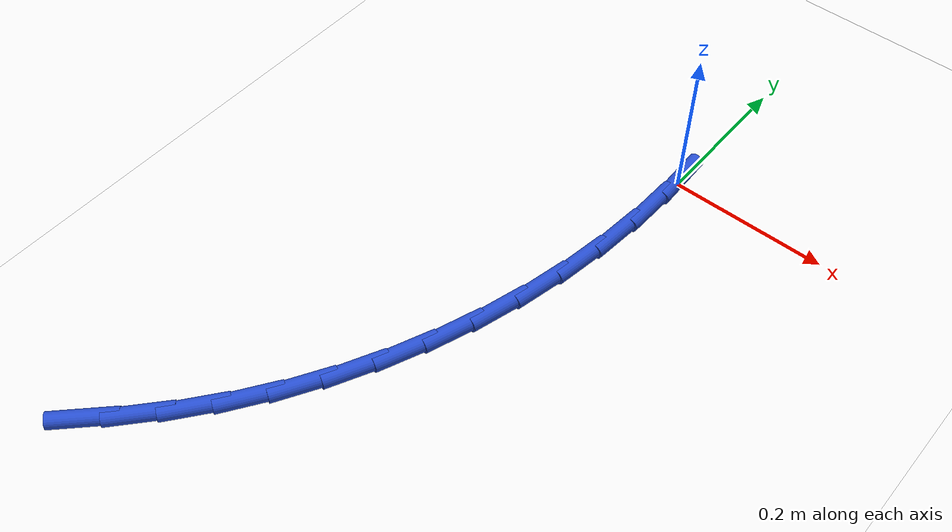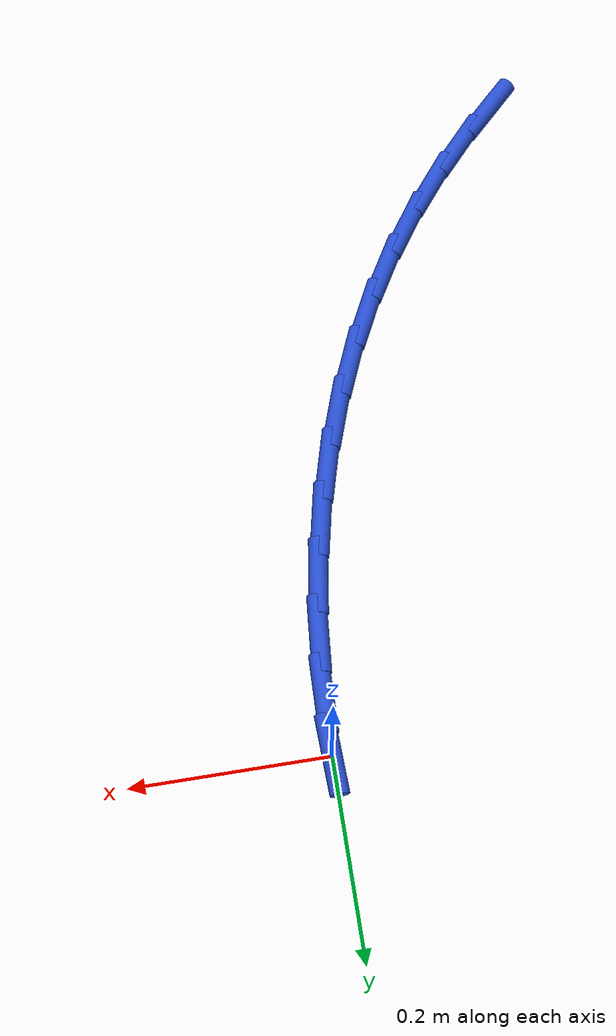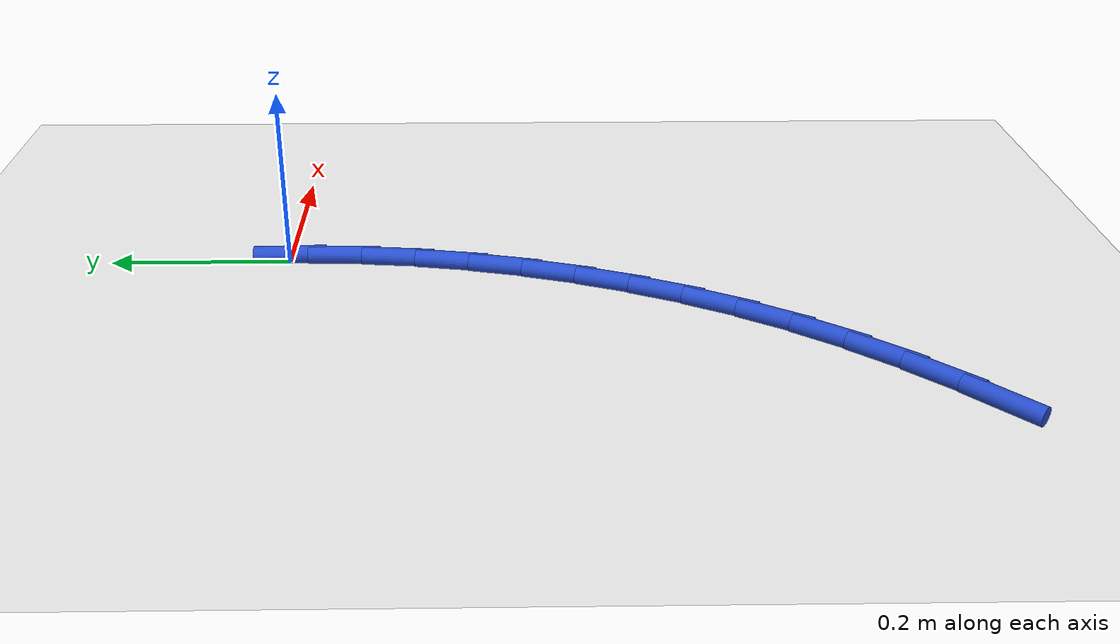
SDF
<sdf version="1.6">
 <world name="default">
  <model name="ground_plane">
   <static>1</static>
   <link name="link">
    <collision name="collision">
     <geometry><plane><normal>0 0 1</normal><size>100 100</size></plane></geometry>
     <surface><friction><ode><mu>100</mu><mu2>50</mu2></ode></friction></surface>
    </collision>
    <visual name="visual">
     <cast_shadows>0</cast_shadows>
     <geometry><plane><normal>0 0 1</normal><size>100 100</size></plane></geometry>
     <material>
      <script><uri>file://media/materials/scripts/gazebo.material</uri><name>Gazebo/WhiteGlow</name></script>
     </material>
    </visual>
   </link>
  </model>
  <model name="line">
   <link name="link_0">
    <pose>3.469446951953614e-18 1.3877787807814457e-17 0.01 0 1.57 -1.5366920230652816</pose>
    <collision name="collision">
     <geometry><cylinder><radius>0.01</radius><length>0.08</length></cylinder></geometry>
    </collision>
    <visual name="visual">
     <material>
      <script><name>Gazebo/Blue</name><uri>file://media/materials/scripts/gazebo.material</uri></script>
     </material>
     <geometry><cylinder><radius>0.01</radius><length>0.08</length></cylinder></geometry>
    </visual>
   </link>
   <link name="link_97">
    <pose>-0.2908865234643623 -0.6961304310469861 0.01 0 1.57 0.7904097558675921</pose>
    <collision name="collision">
     <geometry><cylinder><radius>0.01</radius><length>0.08</length></cylinder></geometry>
    </collision>
    <visual name="visual">
     <material>
      <script><name>Gazebo/Blue</name><uri>file://media/materials/scripts/gazebo.material</uri></script>
     </material>
     <geometry><cylinder><radius>0.01</radius><length>0.08</length></cylinder></geometry>
    </visual>
   </link>
   <link name="link_98">
    <pose>-0.2495116417873945 -0.654338748955803 0.01 0 1.57 0.8493418275209346</pose>
    <collision name="collision">
     <geometry><cylinder><radius>0.01</radius><length>0.08</length></cylinder></geometry>
    </collision>
    <visual name="visual">
     <material>
      <script><name>Gazebo/Blue</name><uri>file://media/materials/scripts/gazebo.material</uri></script>
     </material>
     <geometry><cylinder><radius>0.01</radius><length>0.08</length></cylinder></geometry>
    </visual>
   </link>
   <link name="link_99">
    <pose>-0.21080470462111486 -0.6103358198419387 0.01 0 1.57 0.912966479052678</pose>
    <collision name="collision">
     <geometry><cylinder><radius>0.01</radius><length>0.08</length></cylinder></geometry>
    </collision>
    <visual name="visual">
     <material>
      <script><name>Gazebo/Blue</name><uri>file://media/materials/scripts/gazebo.material</uri></script>
     </material>
     <geometry><cylinder><radius>0.01</radius><length>0.08</length></cylinder></geometry>
    </visual>
   </link>
   <link name="link_100">
    <pose>-0.1749848997702213 -0.5639751483692016 0.01 0 1.57 0.9807105981870058</pose>
    <collision name="collision">
     <geometry><cylinder><radius>0.01</radius><length>0.08</length></cylinder></geometry>
    </collision>
    <visual name="visual">
     <material>
      <script><name>Gazebo/Blue</name><uri>file://media/materials/scripts/gazebo.material</uri></script>
     </material>
     <geometry><cylinder><radius>0.01</radius><length>0.08</length></cylinder></geometry>
    </visual>
   </link>
   <link name="link_101">
    <pose>-0.14226762273551036 -0.5151200442537902 0.01 0 1.57 1.04901620543554</pose>
    <collision name="collision">
     <geometry><cylinder><radius>0.01</radius><length>0.08</length></cylinder></geometry>
    </collision>
    <visual name="visual">
     <material>
      <script><name>Gazebo/Blue</name><uri>file://media/materials/scripts/gazebo.material</uri></script>
     </material>
     <geometry><cylinder><radius>0.01</radius><length>0.08</length></cylinder></geometry>
    </visual>
   </link>
   <link name="link_102">
    <pose>-0.11278722420747365 -0.4638433596512843 0.01 0 1.57 1.1150451672716706</pose>
    <collision name="collision">
     <geometry><cylinder><radius>0.01</radius><length>0.08</length></cylinder></geometry>
    </collision>
    <visual name="visual">
     <material>
      <script><name>Gazebo/Blue</name><uri>file://media/materials/scripts/gazebo.material</uri></script>
     </material>
     <geometry><cylinder><radius>0.01</radius><length>0.08</length></cylinder></geometry>
    </visual>
   </link>
   <link name="link_103">
    <pose>-0.08660030067964765 -0.41041898123189696 0.01 0 1.57 1.1790534719109693</pose>
    <collision name="collision">
     <geometry><cylinder><radius>0.01</radius><length>0.08</length></cylinder></geometry>
    </collision>
    <visual name="visual">
     <material>
      <script><name>Gazebo/Blue</name><uri>file://media/materials/scripts/gazebo.material</uri></script>
     </material>
     <geometry><cylinder><radius>0.01</radius><length>0.08</length></cylinder></geometry>
    </visual>
   </link>
   <link name="link_104">
    <pose>-0.06376031481880841 -0.3551288982167759 0.01 0 1.57 1.2414433158189433</pose>
    <collision name="collision">
     <geometry><cylinder><radius>0.01</radius><length>0.08</length></cylinder></geometry>
    </collision>
    <visual name="visual">
     <material>
      <script><name>Gazebo/Blue</name><uri>file://media/materials/scripts/gazebo.material</uri></script>
     </material>
     <geometry><cylinder><radius>0.01</radius><length>0.08</length></cylinder></geometry>
    </visual>
   </link>
   <link name="link_105">
    <pose>-0.04432072929173326 -0.2982550998270713 0.01 0 1.57 1.3026306337439584</pose>
    <collision name="collision">
     <geometry><cylinder><radius>0.01</radius><length>0.08</length></cylinder></geometry>
    </collision>
    <visual name="visual">
     <material>
      <script><name>Gazebo/Blue</name><uri>file://media/materials/scripts/gazebo.material</uri></script>
     </material>
     <geometry><cylinder><radius>0.01</radius><length>0.08</length></cylinder></geometry>
    </visual>
   </link>
   <link name="link_106">
    <pose>-0.02833500676519844 -0.24007957528393092 0.01 0 1.57 1.363037467778475</pose>
    <collision name="collision">
     <geometry><cylinder><radius>0.01</radius><length>0.08</length></cylinder></geometry>
    </collision>
    <visual name="visual">
     <material>
      <script><name>Gazebo/Blue</name><uri>file://media/materials/scripts/gazebo.material</uri></script>
     </material>
     <geometry><cylinder><radius>0.01</radius><length>0.08</length></cylinder></geometry>
    </visual>
   </link>
   <link name="link_107">
    <pose>-0.015856609905981107 -0.18088431380850525 0.01 0 1.57 1.4230870883617275</pose>
    <collision name="collision">
     <geometry><cylinder><radius>0.01</radius><length>0.08</length></cylinder></geometry>
    </collision>
    <visual name="visual">
     <material>
      <script><name>Gazebo/Blue</name><uri>file://media/materials/scripts/gazebo.material</uri></script>
     </material>
     <geometry><cylinder><radius>0.01</radius><length>0.08</length></cylinder></geometry>
    </visual>
   </link>
   <link name="link_108">
    <pose>-0.006939001380857681 -0.12095130462194167 0.01 0 1.57 1.483200792015364</pose>
    <collision name="collision">
     <geometry><cylinder><radius>0.01</radius><length>0.08</length></cylinder></geometry>
    </collision>
    <visual name="visual">
     <material>
      <script><name>Gazebo/Blue</name><uri>file://media/materials/scripts/gazebo.material</uri></script>
     </material>
     <geometry><cylinder><radius>0.01</radius><length>0.08</length></cylinder></geometry>
    </visual>
   </link>
   <link name="link_109">
    <pose>-0.0016356438566051106 -0.06056253694539074 0.01 0 1.57 1.5437953715809791</pose>
    <collision name="collision">
     <geometry><cylinder><radius>0.01</radius><length>0.08</length></cylinder></geometry>
    </collision>
    <visual name="visual">
     <material>
      <script><name>Gazebo/Blue</name><uri>file://media/materials/scripts/gazebo.material</uri></script>
     </material>
     <geometry><cylinder><radius>0.01</radius><length>0.08</length></cylinder></geometry>
    </visual>
   </link>
  </model>
 </world>
</sdf>
